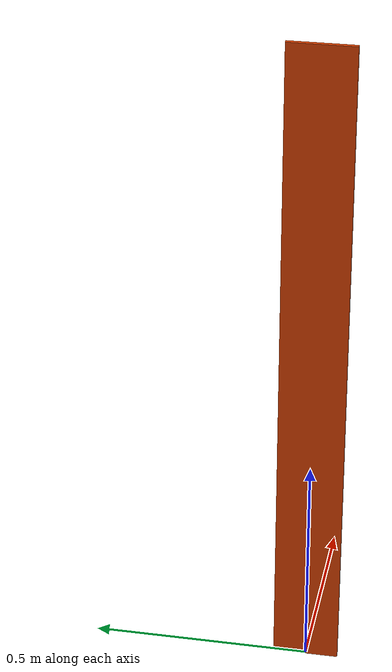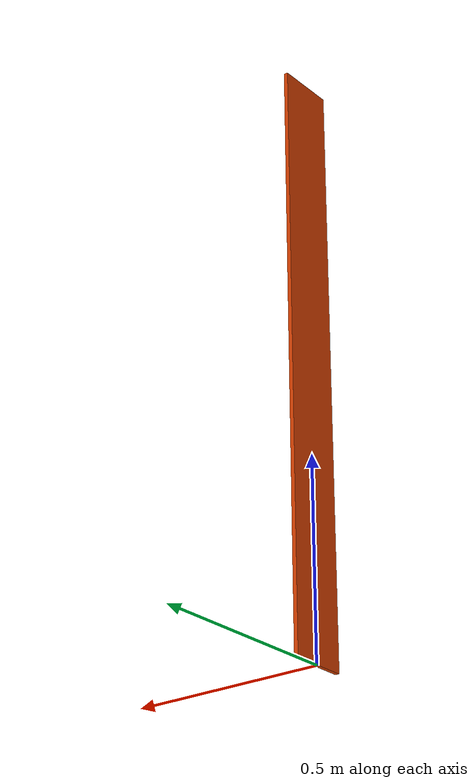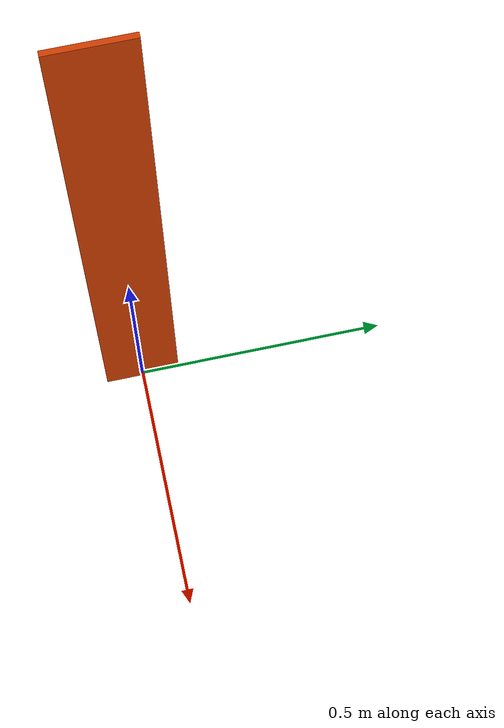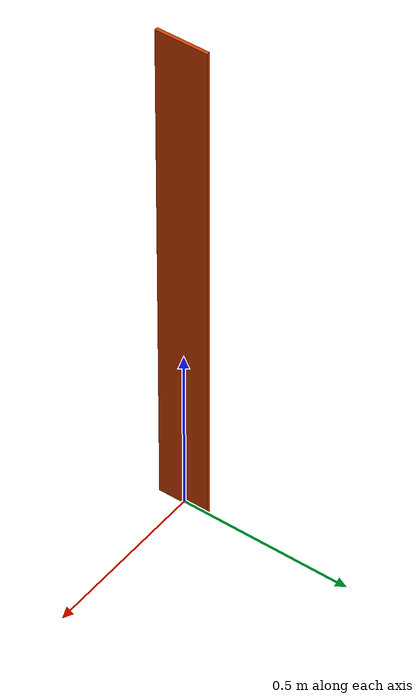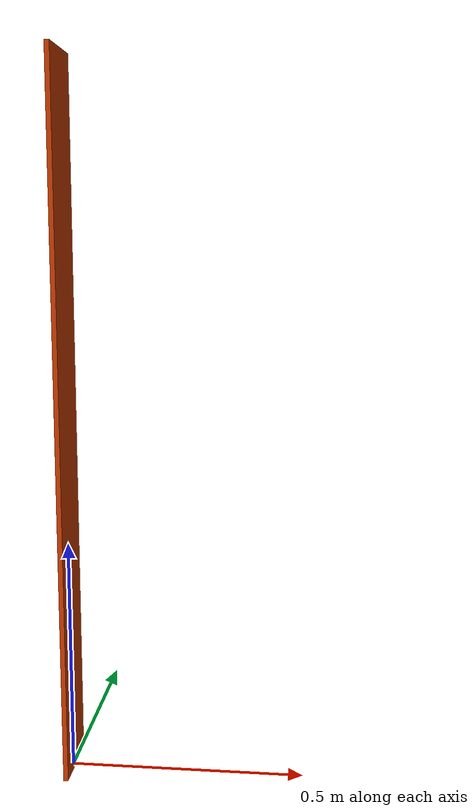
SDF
<?xml version='1.0' encoding='UTF-8'?>
<sdf version="1.6">
    <model name="orange_flare">
        <static>true</static>
  <link name="pool">
      <visual name="visual">
                <geometry>
                    <mesh>
          <uri>model://orange_flare/meshes/orange_flare.dae</uri>
                    </mesh>
                </geometry>
            </visual>
    <collision name="pool_collision">
      <geometry>
        <mesh>
          <uri>model://orange_flare/meshes/orange_flare.dae</uri>
          <scale>1 1 1</scale>
        </mesh>
      </geometry>
      <surface>
        <contact>
          <collide_without_contact>false</collide_without_contact>
          <collide_bitmask>0x01</collide_bitmask>
        </contact>
      </surface>
    </collision>
  </link>
    </model>
</sdf>
